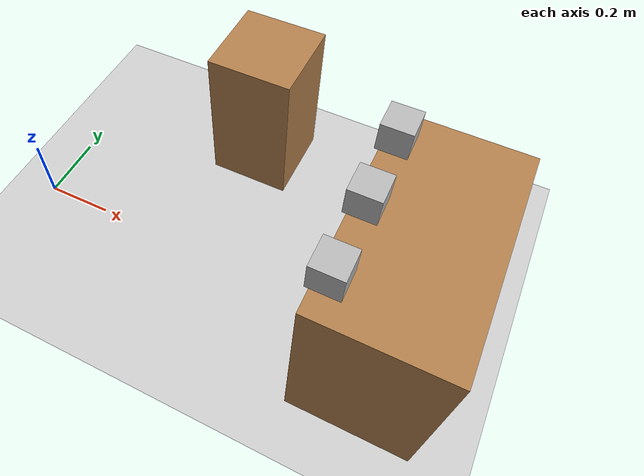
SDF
<?xml version="1.0"?>
<sdf version="1.6">
  <world name="default">
    <include><uri>model://ground_plane</uri></include>
    <include><uri>model://sun</uri></include>
    <include>
      <uri>model://library_table</uri>
      <name>library_table</name>
      <pose>1.14 0 0.265 0 0 0</pose>
    </include>
    <include>
      <uri>model://aruco_box_1</uri>
      <name>aruco_box_1</name>
      <pose>1.00 0.20 0.571 0 0 0</pose>
    </include>
    <include>
      <uri>model://tray_pedestal</uri>
      <name>tray_pedestal</name>
      <pose>0.55 0.45 0.225 0 0 0</pose>
    </include>
      <plugin name="model_attachment" filename="libboeing_gazebo_model_attachment_plugin_lib.so"></plugin>
      <include>
      <uri>model://aruco_box_2</uri>
      <name>aruco_box_2</name>
      <pose>1.00 0 0.571 0 0 0</pose>
    </include>
    <include>
      <uri>model://aruco_box_3</uri>
      <name>aruco_box_3</name>
      <pose>1.00 -0.20 0.571 0 0 0</pose>
    </include>
  </world>
</sdf>

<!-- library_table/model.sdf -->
<sdf version="1.6">
  <model name="library_table">
    <static>true</static>
    <link name="link">
      <collision name="collision">
        <geometry><box><size>0.34 0.6 0.53</size></box></geometry>
        <surface><friction><ode><mu>1.0</mu><mu2>1.0</mu2></ode></friction></surface>
      </collision>
      <visual name="visual">
        <geometry><box><size>0.34 0.6 0.53</size></box></geometry>
        <material><script>
          <uri>file://media/materials/scripts/gazebo.material</uri>
          <name>Gazebo/Wood</name>
        </script></material>
      </visual>
    </link>
  </model>
</sdf>

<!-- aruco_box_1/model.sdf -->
<sdf version="1.6">
  <model name="aruco_box_1">
    <static>false</static>
    <link name="link">
      <inertial>
        <mass>0.2</mass>
        <inertia>
          <ixx>2.13e-4</ixx><iyy>2.13e-4</iyy><izz>2.13e-4</izz>
          <ixy>0</ixy><ixz>0</ixz><iyz>0</iyz>
        </inertia>
      </inertial>
      <collision name="collision">
        <geometry><box><size>0.08 0.08 0.08</size></box></geometry>
        <surface>
          <friction><ode><mu>3.0</mu><mu2>3.0</mu2></ode></friction>
          <contact><ode><kp>1e6</kp><kd>100</kd><min_depth>0.001</min_depth></ode></contact>
        </surface>
      </collision>
      <visual name="visual">
        <geometry><box><size>0.08 0.08 0.08</size></box></geometry>
        <material>
          <script>
            <uri>model://aruco_box_1/materials/scripts</uri>
            <uri>model://aruco_box_1/materials/textures</uri>
            <name>ArucoMarker/Marker1</name>
          </script>
        </material>
      </visual>
    </link>
  </model>
</sdf>

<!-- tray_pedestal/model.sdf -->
<sdf version="1.6">
  <model name="tray_pedestal">
    <static>true</static>
    <link name="link">
      <collision name="collision">
        <geometry><box><size>0.25 0.25 0.45</size></box></geometry>
        <surface><friction><ode><mu>1.0</mu><mu2>1.0</mu2></ode></friction></surface>
      </collision>
      <visual name="visual">
        <geometry><box><size>0.25 0.25 0.45</size></box></geometry>
        <material><script>
          <uri>file://media/materials/scripts/gazebo.material</uri>
          <name>Gazebo/Wood</name>
        </script></material>
      </visual>
    </link>
  </model>
</sdf>

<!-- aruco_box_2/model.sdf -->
<sdf version="1.6">
  <model name="aruco_box_2">
    <static>false</static>
    <link name="link">
      <inertial>
        <mass>0.2</mass>
        <inertia>
          <ixx>2.13e-4</ixx><iyy>2.13e-4</iyy><izz>2.13e-4</izz>
          <ixy>0</ixy><ixz>0</ixz><iyz>0</iyz>
        </inertia>
      </inertial>
      <collision name="collision">
        <geometry><box><size>0.08 0.08 0.08</size></box></geometry>
        <surface>
          <friction><ode><mu>3.0</mu><mu2>3.0</mu2></ode></friction>
          <contact><ode><kp>1e6</kp><kd>100</kd><min_depth>0.001</min_depth></ode></contact>
        </surface>
      </collision>
      <visual name="visual">
        <geometry><box><size>0.08 0.08 0.08</size></box></geometry>
        <material>
          <script>
            <uri>model://aruco_box_2/materials/scripts</uri>
            <uri>model://aruco_box_2/materials/textures</uri>
            <name>ArucoMarker/Marker2</name>
          </script>
        </material>
      </visual>
    </link>
  </model>
</sdf>

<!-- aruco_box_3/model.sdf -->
<sdf version="1.6">
  <model name="aruco_box_3">
    <static>false</static>
    <link name="link">
      <inertial>
        <mass>0.2</mass>
        <inertia>
          <ixx>2.13e-4</ixx><iyy>2.13e-4</iyy><izz>2.13e-4</izz>
          <ixy>0</ixy><ixz>0</ixz><iyz>0</iyz>
        </inertia>
      </inertial>
      <collision name="collision">
        <geometry><box><size>0.08 0.08 0.08</size></box></geometry>
        <surface>
          <friction><ode><mu>3.0</mu><mu2>3.0</mu2></ode></friction>
          <contact><ode><kp>1e6</kp><kd>100</kd><min_depth>0.001</min_depth></ode></contact>
        </surface>
      </collision>
      <visual name="visual">
        <geometry><box><size>0.08 0.08 0.08</size></box></geometry>
        <material>
          <script>
            <uri>model://aruco_box_3/materials/scripts</uri>
            <uri>model://aruco_box_3/materials/textures</uri>
            <name>ArucoMarker/Marker3</name>
          </script>
        </material>
      </visual>
    </link>
  </model>
</sdf>
